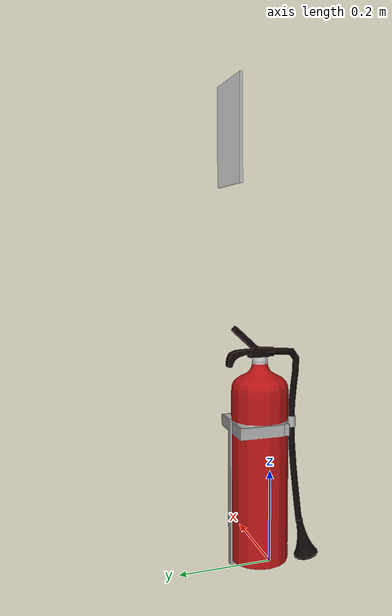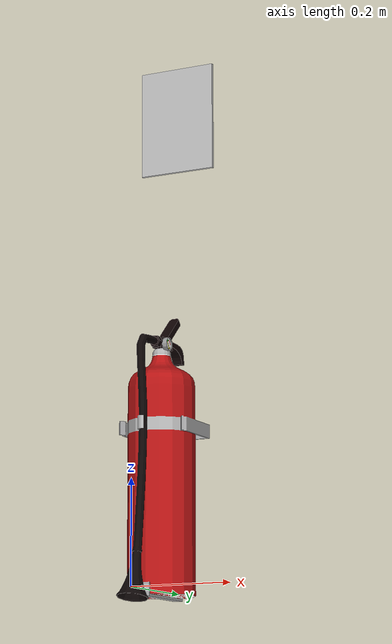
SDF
<?xml version="1.0" ?>
<sdf version="1.5">
  <model name="fire_extinguisher">
    <static>true</static>
    <link name="fire_extinguisher_link">
        <collision name="fire_extinguisher_collision">
         <geometry>
            <mesh>
                <uri>model://fire_extinguisher/meshes/model.dae</uri>
                <scale>1.0 1.0 1.0</scale>
            </mesh>
        </geometry>
      </collision>

      <visual name="fire_extinguisher_mesh">
        <cast_shadows>true</cast_shadows>
        <geometry>
            <mesh>
                <uri>model://fire_extinguisher/meshes/model.dae</uri>
                <scale>1.0 1.0 1.0</scale>
            </mesh>
        </geometry>
      </visual>
    </link>
  </model>
</sdf>
